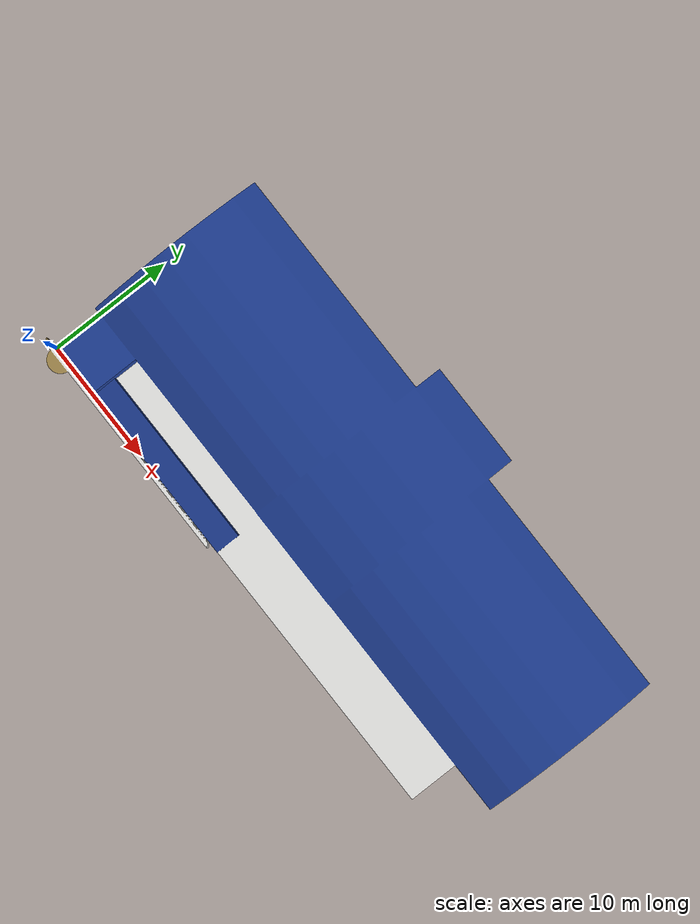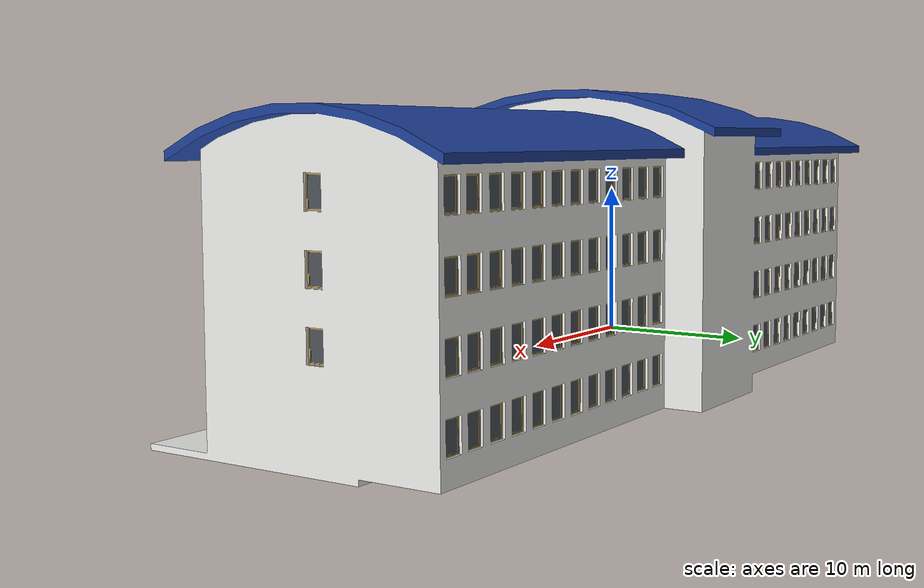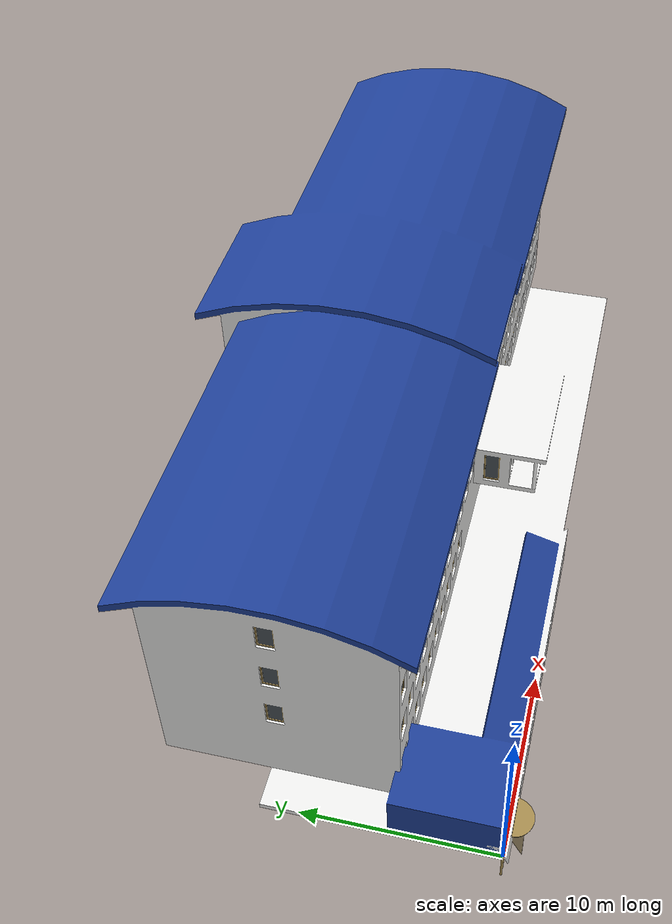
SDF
<?xml version="1.0" ?>
<sdf version="1.6">
  <model name="hospital">
    <static>true</static>

    <link name="hospital_link">

      <!-- Visual-->
      <visual name="hospital_visual">
        <geometry>
          <mesh>
            <uri>model://hospital/meshes/hospital.dae</uri>
          </mesh>
        </geometry>
      </visual>

      <!-- Collision -->
      <collision name="hospital_collision">
        <geometry>
          <mesh>
            <uri>model://hospital/meshes/hospital.dae</uri>
          </mesh>
        </geometry>
      </collision>

    </link>

  </model>
</sdf>
